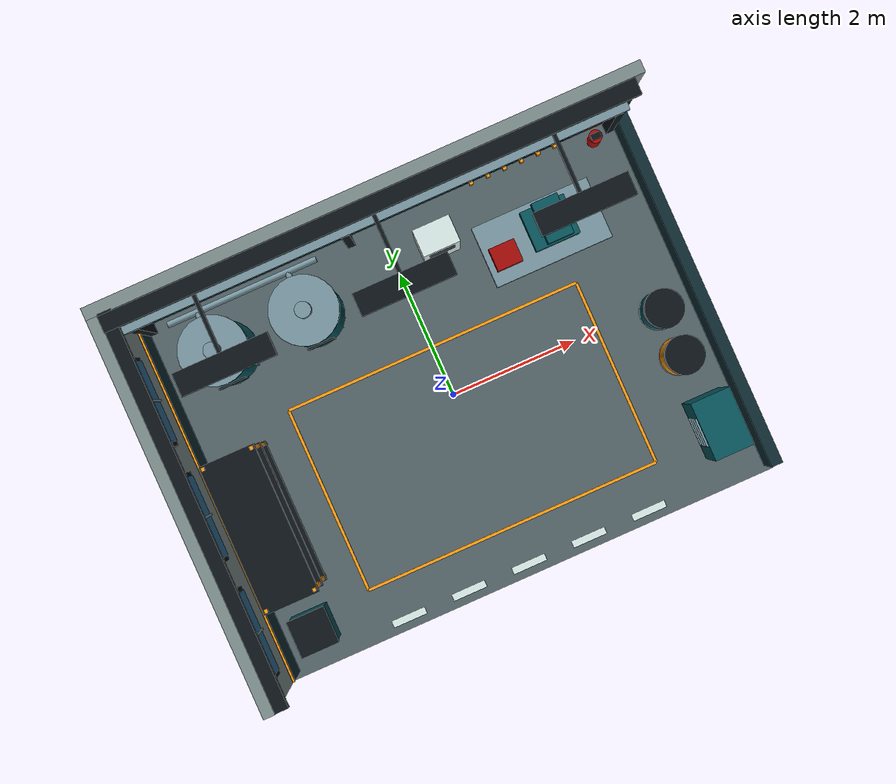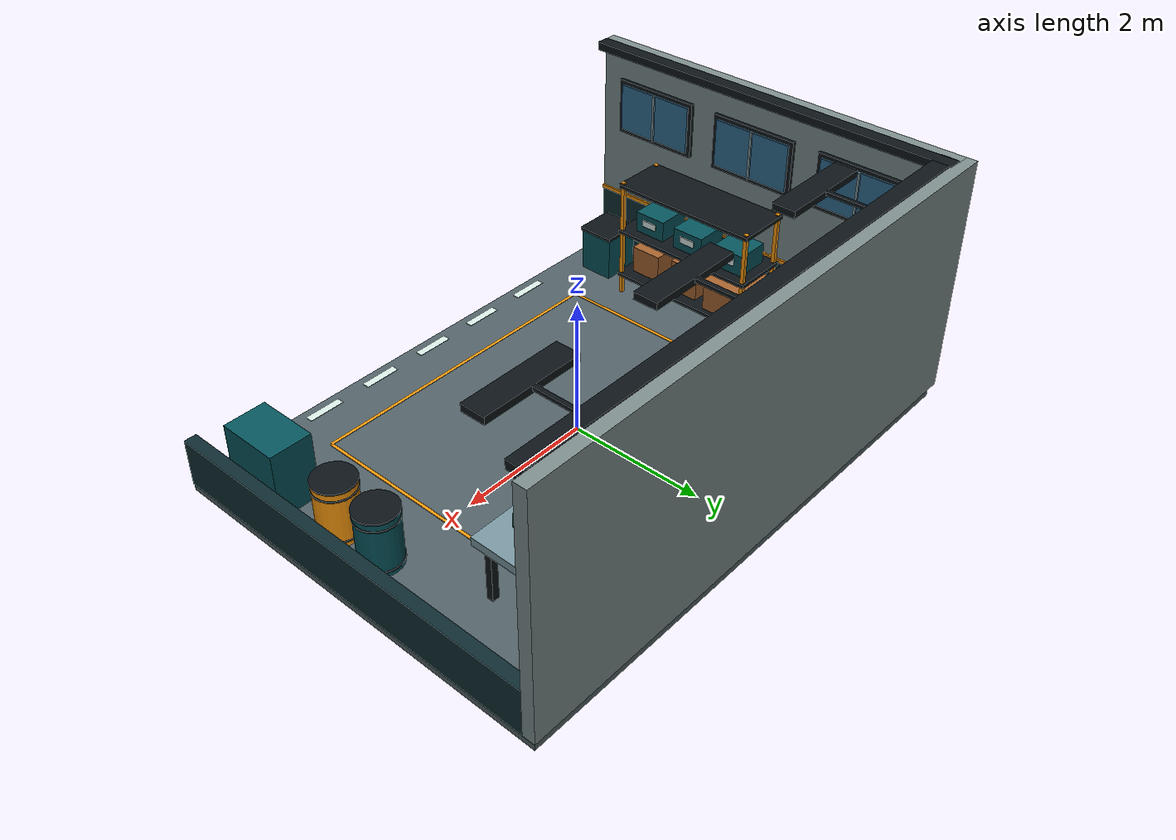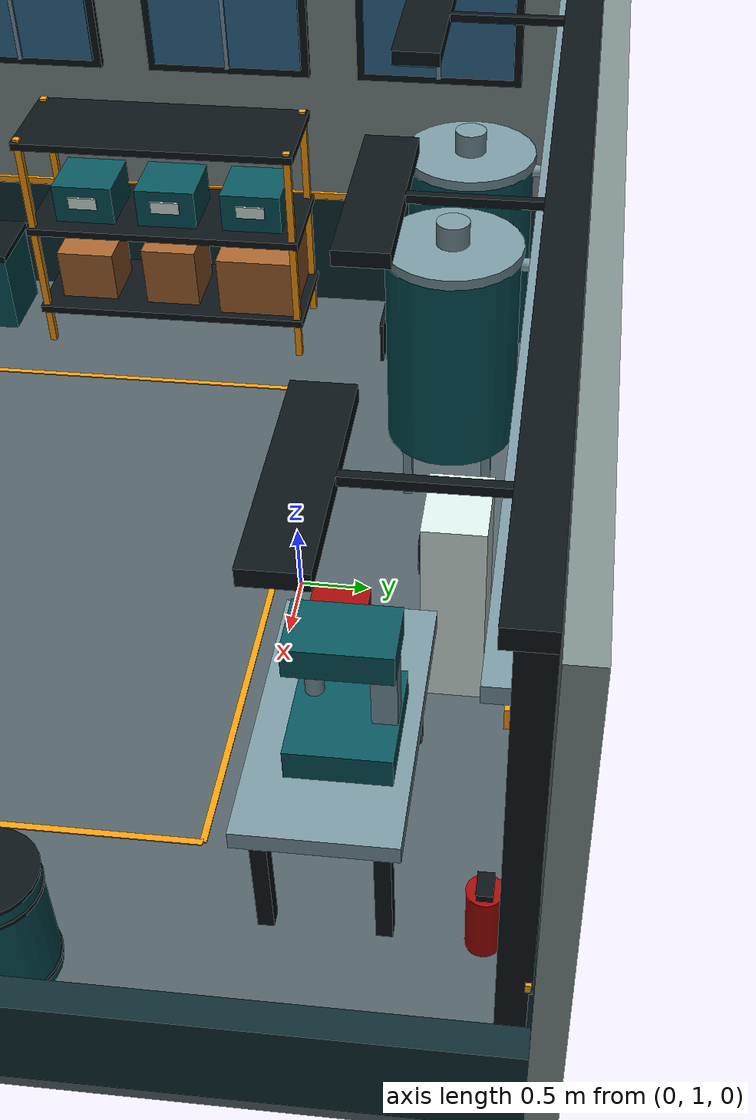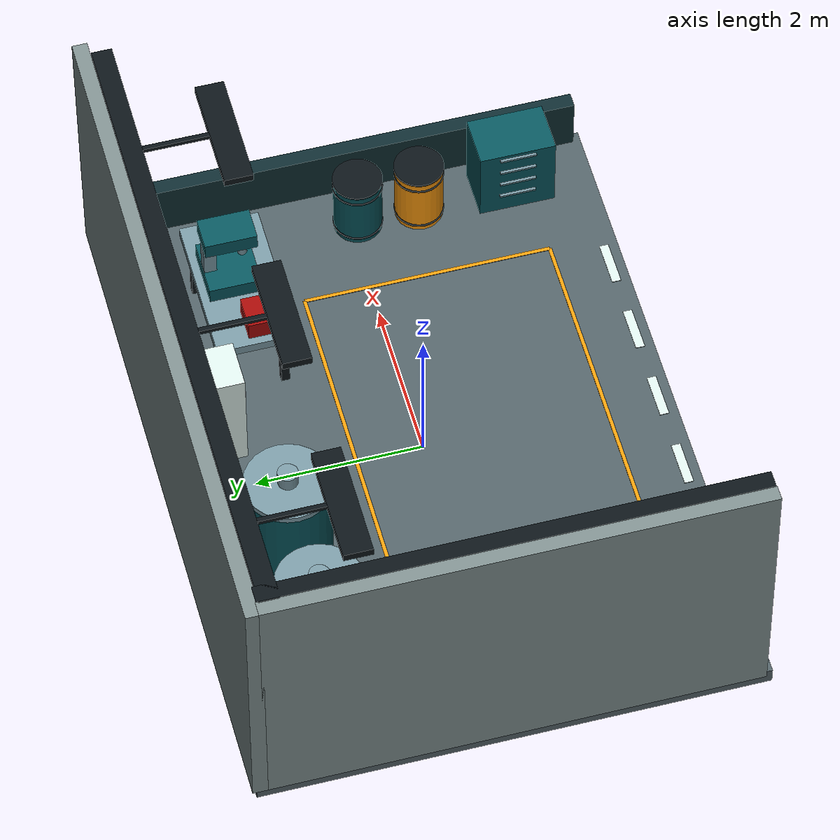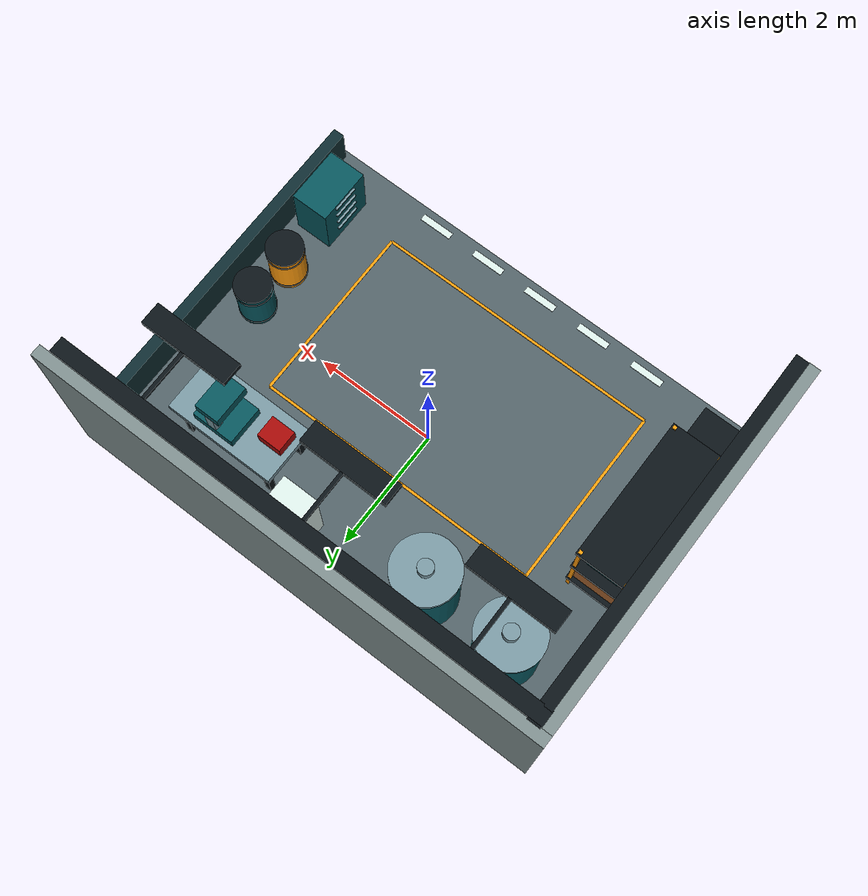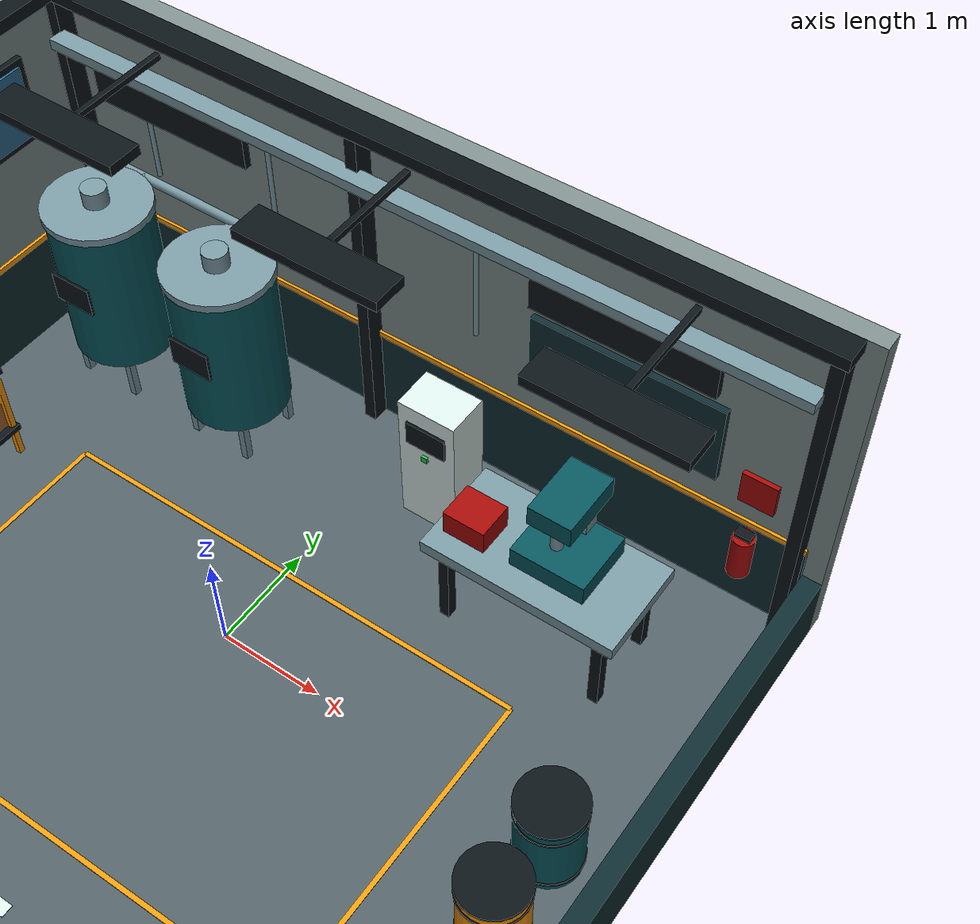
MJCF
<?xml version='1.0' encoding='utf-8'?>
<mujoco model="planta_industrial">
  <compiler angle="radian" />
  <option timestep="0.002" gravity="0 0 -9.81" />
  <visual>
    <global offwidth="1200" offheight="900" />
    <headlight diffuse="0.35 0.35 0.35" ambient="0.2 0.2 0.2" />
  </visual>
  <default>
    <geom friction="0.8 0.01 0.001" condim="3" />
  </default>
  <worldbody>
    <light pos="0 -2 8" dir="0 0 -1" directional="true" />
    <camera name="overview" pos="11 -15 12" quat="0.825515 0.4708795 0.1541521 0.2702492" />
    <light name="LED_1" pos="-2.65 1.63 3.055" dir="0 0 -1" diffuse="0.44 0.495 0.55" specular="0.2 0.2 0.2" castshadow="true" />
    <light name="LED_2" pos="0 1.63 3.055" dir="0 0 -1" diffuse="0.44 0.495 0.55" specular="0.2 0.2 0.2" castshadow="true" />
    <light name="LED_3" pos="2.65 1.63 3.055" dir="0 0 -1" diffuse="0.44 0.495 0.55" specular="0.2 0.2 0.2" castshadow="true" />
    <geom name="bench_toolbox" type="box" size="0.2 0.175 0.12" rgba="0.64 0.035 0.025 1" pos="1.52 1.55 1.12" quat="1 0 0 0" />
    <geom name="cable_tray" type="box" size="3.75 0.09 0.05" rgba="0.47 0.59 0.63 1" pos="0 2.65 2.97" quat="1 0 0 0" />
    <geom name="control_cabinet" type="box" size="0.29 0.21 0.72" rgba="0.85 0.92 0.9 1" pos="0.7 2.2 0.72" quat="1 0 0 0" />
    <geom name="control_light" type="box" size="0.03 0.0125 0.03" rgba="0.14 0.76 0.3 1" pos="0.7 1.96 0.91" quat="1 0 0 0" contype="0" conaffinity="0" />
    <geom name="control_screen" type="box" size="0.2 0.012 0.125" rgba="0.045 0.075 0.09 1" pos="0.7 1.98 1.13" quat="1 0 0 0" contype="0" conaffinity="0" />
    <body name="crate_01" pos="-3.3 -1.37 0.575" quat="1 0 0 0">
      <freejoint name="crate_01_free" />
      <geom name="crate_01" type="box" size="0.24 0.24 0.21" rgba="0.65 0.39 0.18 1" mass="2.0" />
    </body>
    <body name="crate_02" pos="-3.3 -0.63 0.615" quat="1 0 0 0">
      <freejoint name="crate_02_free" />
      <geom name="crate_02" type="box" size="0.26 0.23 0.25" rgba="0.65 0.39 0.18 1" mass="2.0" />
    </body>
    <body name="crate_03" pos="-3.3 0.13 0.615" quat="1 0 0 0">
      <freejoint name="crate_03_free" />
      <geom name="crate_03" type="box" size="0.35 0.325 0.25" rgba="0.65 0.39 0.18 1" mass="2.0" />
    </body>
    <geom name="drawer_handle" type="box" size="0.0175 0.22 0.0125" rgba="0.47 0.59 0.63 1" pos="3.105 -2 0.28" quat="1 0 0 0" contype="0" conaffinity="0" />
    <geom name="drawer_handle.001" type="box" size="0.0175 0.22 0.0125" rgba="0.47 0.59 0.63 1" pos="3.105 -2 0.5" quat="1 0 0 0" contype="0" conaffinity="0" />
    <geom name="drawer_handle.002" type="box" size="0.0175 0.22 0.0125" rgba="0.47 0.59 0.63 1" pos="3.105 -2 0.72" quat="1 0 0 0" contype="0" conaffinity="0" />
    <geom name="drawer_handle.003" type="box" size="0.0175 0.22 0.0125" rgba="0.47 0.59 0.63 1" pos="3.105 -2 0.94" quat="1 0 0 0" contype="0" conaffinity="0" />
    <geom name="drum" type="cylinder" size="0.29 0.42" rgba="0.025 0.33 0.36 1" pos="3.36 -0.1 0.42" quat="1 0 0 0" />
    <geom name="drum.001" type="cylinder" size="0.29 0.42" rgba="1 0.61 0.045 1" pos="3.36 -0.85 0.42" quat="1 0 0 0" />
    <geom name="drum_ring" type="cylinder" size="0.3 0.0125" rgba="0.045 0.075 0.09 1" pos="3.36 -0.1 0.08" quat="1 0 0 0" />
    <geom name="drum_ring.001" type="cylinder" size="0.3 0.0125" rgba="0.045 0.075 0.09 1" pos="3.36 -0.1 0.73" quat="1 0 0 0" />
    <geom name="drum_ring.002" type="cylinder" size="0.3 0.0125" rgba="0.045 0.075 0.09 1" pos="3.36 -0.1 0.845" quat="1 0 0 0" />
    <geom name="drum_ring.003" type="cylinder" size="0.3 0.0125" rgba="0.045 0.075 0.09 1" pos="3.36 -0.85 0.08" quat="1 0 0 0" />
    <geom name="drum_ring.004" type="cylinder" size="0.3 0.0125" rgba="0.045 0.075 0.09 1" pos="3.36 -0.85 0.73" quat="1 0 0 0" />
    <geom name="drum_ring.005" type="cylinder" size="0.3 0.0125" rgba="0.045 0.075 0.09 1" pos="3.36 -0.85 0.845" quat="1 0 0 0" />
    <geom name="entry_mark" type="box" size="0.275 0.055 0.004" rgba="0.85 0.92 0.9 1" pos="-2 -2.83 0.004" quat="1 0 0 0" contype="0" conaffinity="0" />
    <geom name="entry_mark.001" type="box" size="0.275 0.055 0.004" rgba="0.85 0.92 0.9 1" pos="-1 -2.83 0.004" quat="1 0 0 0" contype="0" conaffinity="0" />
    <geom name="entry_mark.002" type="box" size="0.275 0.055 0.004" rgba="0.85 0.92 0.9 1" pos="0 -2.83 0.004" quat="1 0 0 0" contype="0" conaffinity="0" />
    <geom name="entry_mark.003" type="box" size="0.275 0.055 0.004" rgba="0.85 0.92 0.9 1" pos="1 -2.83 0.004" quat="1 0 0 0" contype="0" conaffinity="0" />
    <geom name="entry_mark.004" type="box" size="0.275 0.055 0.004" rgba="0.85 0.92 0.9 1" pos="2 -2.83 0.004" quat="1 0 0 0" contype="0" conaffinity="0" />
    <geom name="extinguisher_handle" type="box" size="0.075 0.045 0.0225" rgba="0.045 0.075 0.09 1" pos="3.42 2.6 1.21" quat="1 0 0 0" />
    <geom name="fire_extinguisher" type="cylinder" size="0.1 0.22" rgba="0.64 0.035 0.025 1" pos="3.42 2.6 0.96" quat="1 0 0 0" />
    <geom name="fire_sign" type="box" size="0.16 0.0225 0.165" rgba="0.64 0.035 0.025 1" pos="3.42 2.73 1.61" quat="1 0 0 0" contype="0" conaffinity="0" />
    <geom name="floor" type="box" size="4 3 0.1" rgba="0.32 0.38 0.4 1" pos="0 0 -0.1" quat="1 0 0 0" />
    <geom name="lamp_bracket" type="box" size="0.0275 0.6 0.0275" rgba="0.045 0.075 0.09 1" pos="-2.65 2.19 3.17" quat="1 0 0 0" />
    <geom name="lamp_bracket.001" type="box" size="0.0275 0.6 0.0275" rgba="0.045 0.075 0.09 1" pos="0 2.19 3.17" quat="1 0 0 0" />
    <geom name="lamp_bracket.002" type="box" size="0.0275 0.6 0.0275" rgba="0.045 0.075 0.09 1" pos="2.65 2.19 3.17" quat="1 0 0 0" />
    <geom name="lamp_diffuser" type="box" size="0.645 0.135 0.015" rgba="0.78 0.9 1 1" pos="-2.65 1.63 3.085" quat="1 0 0 0" contype="0" conaffinity="0" />
    <geom name="lamp_diffuser.001" type="box" size="0.645 0.135 0.015" rgba="0.78 0.9 1 1" pos="0 1.63 3.085" quat="1 0 0 0" contype="0" conaffinity="0" />
    <geom name="lamp_diffuser.002" type="box" size="0.645 0.135 0.015" rgba="0.78 0.9 1 1" pos="2.65 1.63 3.085" quat="1 0 0 0" contype="0" conaffinity="0" />
    <geom name="lamp_housing" type="box" size="0.7 0.17 0.05" rgba="0.045 0.075 0.09 1" pos="-2.65 1.63 3.15" quat="1 0 0 0" />
    <geom name="lamp_housing.001" type="box" size="0.7 0.17 0.05" rgba="0.045 0.075 0.09 1" pos="0 1.63 3.15" quat="1 0 0 0" />
    <geom name="lamp_housing.002" type="box" size="0.7 0.17 0.05" rgba="0.045 0.075 0.09 1" pos="2.65 1.63 3.15" quat="1 0 0 0" />
    <geom name="machine_base" type="box" size="0.35 0.31 0.1" rgba="0.025 0.33 0.36 1" pos="2.3 1.72 1.1" quat="1 0 0 0" />
    <geom name="machine_column" type="box" size="0.075 0.075 0.325" rgba="0.47 0.59 0.63 1" pos="2.3 1.95 1.44" quat="1 0 0 0" />
    <geom name="machine_head" type="box" size="0.2 0.31 0.1" rgba="0.025 0.33 0.36 1" pos="2.3 1.72 1.75" quat="1 0 0 0" />
    <geom name="machine_spindle" type="cylinder" size="0.055 0.14" rgba="0.47 0.59 0.63 1" pos="2.3 1.55 1.5" quat="1 0 0 0" />
    <geom name="rack_bin" type="box" size="0.26 0.25 0.16" rgba="0.025 0.33 0.36 1" pos="-3.3 -1.3 1.27" quat="1 0 0 0" />
    <geom name="rack_bin.001" type="box" size="0.26 0.25 0.16" rgba="0.025 0.33 0.36 1" pos="-3.3 -0.6 1.27" quat="1 0 0 0" />
    <geom name="rack_bin.002" type="box" size="0.26 0.25 0.16" rgba="0.025 0.33 0.36 1" pos="-3.3 0.12 1.27" quat="1 0 0 0" />
    <geom name="rack_bin_label" type="box" size="0.0075 0.12 0.05" rgba="0.85 0.92 0.9 1" pos="-3.032 -1.3 1.29" quat="1 0 0 0" contype="0" conaffinity="0" />
    <geom name="rack_bin_label.001" type="box" size="0.0075 0.12 0.05" rgba="0.85 0.92 0.9 1" pos="-3.032 -0.6 1.29" quat="1 0 0 0" contype="0" conaffinity="0" />
    <geom name="rack_bin_label.002" type="box" size="0.0075 0.12 0.05" rgba="0.85 0.92 0.9 1" pos="-3.032 0.12 1.29" quat="1 0 0 0" contype="0" conaffinity="0" />
    <geom name="rack_post" type="box" size="0.0275 0.0275 0.95" rgba="1 0.61 0.045 1" pos="-3.68 -1.72 0.95" quat="1 0 0 0" />
    <geom name="rack_post.001" type="box" size="0.0275 0.0275 0.95" rgba="1 0.61 0.045 1" pos="-3.68 0.48 0.95" quat="1 0 0 0" />
    <geom name="rack_post.002" type="box" size="0.0275 0.0275 0.95" rgba="1 0.61 0.045 1" pos="-2.93 -1.72 0.95" quat="1 0 0 0" />
    <geom name="rack_post.003" type="box" size="0.0275 0.0275 0.95" rgba="1 0.61 0.045 1" pos="-2.93 0.48 0.95" quat="1 0 0 0" />
    <geom name="rack_shelf" type="box" size="0.425 1.15 0.03" rgba="0.045 0.075 0.09 1" pos="-3.305 -0.62 0.33" quat="1 0 0 0" />
    <geom name="rack_shelf.001" type="box" size="0.425 1.15 0.03" rgba="0.045 0.075 0.09 1" pos="-3.305 -0.62 1.08" quat="1 0 0 0" />
    <geom name="rack_shelf.002" type="box" size="0.425 1.15 0.03" rgba="0.045 0.075 0.09 1" pos="-3.305 -0.62 1.85" quat="1 0 0 0" />
    <geom name="recycling_bin" type="box" size="0.29 0.275 0.34" rgba="0.025 0.33 0.36 1" pos="-3.35 -2.37 0.34" quat="1 0 0 0" />
    <geom name="recycling_lid" type="box" size="0.305 0.29 0.0275" rgba="0.045 0.075 0.09 1" pos="-3.35 -2.37 0.7" quat="1 0 0 0" />
    <geom name="section_sign" type="box" size="0.86 0.035 0.17" rgba="0.045 0.075 0.09 1" pos="-2.57 2.74 2.6" quat="1 0 0 0" contype="0" conaffinity="0" />
    <geom name="section_sign.001" type="box" size="0.86 0.035 0.17" rgba="0.045 0.075 0.09 1" pos="2.08 2.74 2.6" quat="1 0 0 0" contype="0" conaffinity="0" />
    <geom name="service_pipe" type="cylinder" size="0.045 1.15" rgba="0.47 0.59 0.63 1" pos="-2.15 2.55 1.9" quat="0.7071068 0 0.7071068 0" />
    <geom name="tank_1" type="cylinder" size="0.49 0.775" rgba="0.025 0.33 0.36 1" pos="-2.85 1.95 1.2" quat="1 0 0 0" />
    <geom name="tank_2" type="cylinder" size="0.49 0.775" rgba="0.025 0.33 0.36 1" pos="-1.45 1.95 1.2" quat="1 0 0 0" />
    <geom name="tank_badge" type="box" size="0.215 0.0125 0.15" rgba="0.045 0.075 0.09 1" pos="-2.85 1.455 1.3" quat="1 0 0 0" contype="0" conaffinity="0" />
    <geom name="tank_badge.001" type="box" size="0.215 0.0125 0.15" rgba="0.045 0.075 0.09 1" pos="-1.45 1.455 1.3" quat="1 0 0 0" contype="0" conaffinity="0" />
    <geom name="tank_connection" type="cylinder" size="0.045 0.3" rgba="0.47 0.59 0.63 1" pos="-2.85 2.25 1.9" quat="0.7071068 0.7071068 0 0" />
    <geom name="tank_connection.001" type="cylinder" size="0.045 0.3" rgba="0.47 0.59 0.63 1" pos="-1.45 2.25 1.9" quat="0.7071068 0.7071068 0 0" />
    <geom name="tank_leg" type="box" size="0.035 0.035 0.22" rgba="0.47 0.59 0.63 1" pos="-3.15 1.65 0.22" quat="1 0 0 0" />
    <geom name="tank_leg.001" type="box" size="0.035 0.035 0.22" rgba="0.47 0.59 0.63 1" pos="-3.15 2.25 0.22" quat="1 0 0 0" />
    <geom name="tank_leg.002" type="box" size="0.035 0.035 0.22" rgba="0.47 0.59 0.63 1" pos="-2.55 1.65 0.22" quat="1 0 0 0" />
    <geom name="tank_leg.003" type="box" size="0.035 0.035 0.22" rgba="0.47 0.59 0.63 1" pos="-2.55 2.25 0.22" quat="1 0 0 0" />
    <geom name="tank_leg.004" type="box" size="0.035 0.035 0.22" rgba="0.47 0.59 0.63 1" pos="-1.75 1.65 0.22" quat="1 0 0 0" />
    <geom name="tank_leg.005" type="box" size="0.035 0.035 0.22" rgba="0.47 0.59 0.63 1" pos="-1.75 2.25 0.22" quat="1 0 0 0" />
    <geom name="tank_leg.006" type="box" size="0.035 0.035 0.22" rgba="0.47 0.59 0.63 1" pos="-1.15 1.65 0.22" quat="1 0 0 0" />
    <geom name="tank_leg.007" type="box" size="0.035 0.035 0.22" rgba="0.47 0.59 0.63 1" pos="-1.15 2.25 0.22" quat="1 0 0 0" />
    <geom name="tank_lid" type="cylinder" size="0.51 0.0375" rgba="0.47 0.59 0.63 1" pos="-2.85 1.95 2" quat="1 0 0 0" />
    <geom name="tank_lid.001" type="cylinder" size="0.51 0.0375" rgba="0.47 0.59 0.63 1" pos="-1.45 1.95 2" quat="1 0 0 0" />
    <geom name="tank_neck" type="cylinder" size="0.12 0.09" rgba="0.47 0.59 0.63 1" pos="-2.85 1.95 2.12" quat="1 0 0 0" />
    <geom name="tank_neck.001" type="cylinder" size="0.12 0.09" rgba="0.47 0.59 0.63 1" pos="-1.45 1.95 2.12" quat="1 0 0 0" />
    <geom name="tool_board" type="box" size="0.9 0.03 0.4" rgba="0.055 0.17 0.19 1" pos="2.15 2.73 1.94" quat="1 0 0 0" />
    <geom name="tool_cabinet" type="box" size="0.31 0.46 0.5" rgba="0.025 0.33 0.36 1" pos="3.43 -2 0.5" quat="1 0 0 0" />
    <geom name="tool_grip" type="box" size="0.0275 0.0325 0.07" rgba="1 0.61 0.045 1" pos="1.45 2.66 1.76" quat="1 0 0 0" contype="0" conaffinity="0" />
    <geom name="tool_grip.001" type="box" size="0.0275 0.0325 0.07" rgba="1 0.61 0.045 1" pos="1.71 2.66 1.76" quat="1 0 0 0" contype="0" conaffinity="0" />
    <geom name="tool_grip.002" type="box" size="0.0275 0.0325 0.07" rgba="1 0.61 0.045 1" pos="1.97 2.66 1.76" quat="1 0 0 0" contype="0" conaffinity="0" />
    <geom name="tool_grip.003" type="box" size="0.0275 0.0325 0.07" rgba="1 0.61 0.045 1" pos="2.23 2.66 1.76" quat="1 0 0 0" contype="0" conaffinity="0" />
    <geom name="tool_grip.004" type="box" size="0.0275 0.0325 0.07" rgba="1 0.61 0.045 1" pos="2.49 2.66 1.76" quat="1 0 0 0" contype="0" conaffinity="0" />
    <geom name="tool_grip.005" type="box" size="0.0275 0.0325 0.07" rgba="1 0.61 0.045 1" pos="2.75 2.66 1.76" quat="1 0 0 0" contype="0" conaffinity="0" />
    <geom name="tool_shaft" type="box" size="0.0125 0.0175 0.165" rgba="0.47 0.59 0.63 1" pos="1.45 2.68 1.94" quat="1 0 0 0" contype="0" conaffinity="0" />
    <geom name="tool_shaft.001" type="box" size="0.0125 0.0175 0.165" rgba="0.47 0.59 0.63 1" pos="1.71 2.68 1.94" quat="1 0 0 0" contype="0" conaffinity="0" />
    <geom name="tool_shaft.002" type="box" size="0.0125 0.0175 0.165" rgba="0.47 0.59 0.63 1" pos="1.97 2.68 1.94" quat="1 0 0 0" contype="0" conaffinity="0" />
    <geom name="tool_shaft.003" type="box" size="0.0125 0.0175 0.165" rgba="0.47 0.59 0.63 1" pos="2.23 2.68 1.94" quat="1 0 0 0" contype="0" conaffinity="0" />
    <geom name="tool_shaft.004" type="box" size="0.0125 0.0175 0.165" rgba="0.47 0.59 0.63 1" pos="2.49 2.68 1.94" quat="1 0 0 0" contype="0" conaffinity="0" />
    <geom name="tool_shaft.005" type="box" size="0.0125 0.0175 0.165" rgba="0.47 0.59 0.63 1" pos="2.75 2.68 1.94" quat="1 0 0 0" contype="0" conaffinity="0" />
    <geom name="utility_conduit" type="cylinder" size="0.023 0.56" rgba="0.47 0.59 0.63 1" pos="-2.85 2.73 2.36" quat="1 0 0 0" />
    <geom name="utility_conduit.001" type="cylinder" size="0.023 0.56" rgba="0.47 0.59 0.63 1" pos="-1.45 2.73 2.36" quat="1 0 0 0" />
    <geom name="utility_conduit.002" type="cylinder" size="0.023 0.56" rgba="0.47 0.59 0.63 1" pos="0.7 2.73 2.36" quat="1 0 0 0" />
    <geom name="wall_back" type="box" size="4.06 0.09 1.75" rgba="0.49 0.55 0.55 1" pos="0 2.97 1.75" quat="1 0 0 0" />
    <geom name="wall_back_base" type="box" size="3.88 0.0125 0.5" rgba="0.055 0.17 0.19 1" pos="0 2.868 0.5" quat="1 0 0 0" contype="0" conaffinity="0" />
    <geom name="wall_back_beam" type="box" size="3.9 0.12 0.06" rgba="0.045 0.075 0.09 1" pos="0 2.75 3.45" quat="1 0 0 0" />
    <geom name="wall_back_stripe" type="box" size="3.88 0.015 0.0275" rgba="1 0.61 0.045 1" pos="0 2.85 1.04" quat="1 0 0 0" contype="0" conaffinity="0" />
    <geom name="wall_column" type="box" size="0.06 0.09 1.75" rgba="0.045 0.075 0.09 1" pos="-3.8 2.78 1.75" quat="1 0 0 0" />
    <geom name="wall_column.001" type="box" size="0.06 0.09 1.75" rgba="0.045 0.075 0.09 1" pos="-0.5 2.78 1.75" quat="1 0 0 0" />
    <geom name="wall_column.002" type="box" size="0.06 0.09 1.75" rgba="0.045 0.075 0.09 1" pos="3.8 2.78 1.75" quat="1 0 0 0" />
    <geom name="wall_left" type="box" size="0.09 2.91 1.75" rgba="0.49 0.55 0.55 1" pos="-3.97 0 1.75" quat="1 0 0 0" />
    <geom name="wall_left_base" type="box" size="0.0125 2.9 0.5" rgba="0.055 0.17 0.19 1" pos="-3.868 0 0.5" quat="1 0 0 0" contype="0" conaffinity="0" />
    <geom name="wall_left_beam" type="box" size="0.1 2.9 0.06" rgba="0.045 0.075 0.09 1" pos="-3.79 0 3.45" quat="1 0 0 0" />
    <geom name="wall_left_stripe" type="box" size="0.015 2.9 0.0275" rgba="1 0.61 0.045 1" pos="-3.85 0 1.04" quat="1 0 0 0" contype="0" conaffinity="0" />
    <geom name="wall_right_cutaway" type="box" size="0.09 2.91 0.35" rgba="0.055 0.17 0.19 1" pos="3.97 0 0.35" quat="1 0 0 0" />
    <geom name="window_frame" type="box" size="0.0275 0.675 0.425" rgba="0.045 0.075 0.09 1" pos="-3.848 -1.9 2.55" quat="1 0 0 0" contype="0" conaffinity="0" />
    <geom name="window_frame.001" type="box" size="0.0275 0.675 0.425" rgba="0.045 0.075 0.09 1" pos="-3.848 -0.15 2.55" quat="1 0 0 0" contype="0" conaffinity="0" />
    <geom name="window_frame.002" type="box" size="0.0275 0.675 0.425" rgba="0.045 0.075 0.09 1" pos="-3.848 1.6 2.55" quat="1 0 0 0" contype="0" conaffinity="0" />
    <geom name="window_mullion" type="box" size="0.0175 0.0175 0.365" rgba="0.47 0.59 0.63 1" pos="-3.79 -1.9 2.55" quat="1 0 0 0" contype="0" conaffinity="0" />
    <geom name="window_mullion.001" type="box" size="0.0175 0.0175 0.365" rgba="0.47 0.59 0.63 1" pos="-3.79 -0.15 2.55" quat="1 0 0 0" contype="0" conaffinity="0" />
    <geom name="window_mullion.002" type="box" size="0.0175 0.0175 0.365" rgba="0.47 0.59 0.63 1" pos="-3.79 1.6 2.55" quat="1 0 0 0" contype="0" conaffinity="0" />
    <geom name="window_pane" type="box" size="0.0125 0.61 0.36" rgba="0.18 0.42 0.57 1" pos="-3.81 -1.9 2.55" quat="1 0 0 0" contype="0" conaffinity="0" />
    <geom name="window_pane.001" type="box" size="0.0125 0.61 0.36" rgba="0.18 0.42 0.57 1" pos="-3.81 -0.15 2.55" quat="1 0 0 0" contype="0" conaffinity="0" />
    <geom name="window_pane.002" type="box" size="0.0125 0.61 0.36" rgba="0.18 0.42 0.57 1" pos="-3.81 1.6 2.55" quat="1 0 0 0" contype="0" conaffinity="0" />
    <geom name="workbench_leg" type="box" size="0.05 0.05 0.44" rgba="0.045 0.075 0.09 1" pos="1.4 1.3 0.44" quat="1 0 0 0" />
    <geom name="workbench_leg.001" type="box" size="0.05 0.05 0.44" rgba="0.045 0.075 0.09 1" pos="1.4 2 0.44" quat="1 0 0 0" />
    <geom name="workbench_leg.002" type="box" size="0.05 0.05 0.44" rgba="0.045 0.075 0.09 1" pos="2.9 1.3 0.44" quat="1 0 0 0" />
    <geom name="workbench_leg.003" type="box" size="0.05 0.05 0.44" rgba="0.045 0.075 0.09 1" pos="2.9 2 0.44" quat="1 0 0 0" />
    <geom name="workbench_top" type="box" size="0.925 0.475 0.06" rgba="0.47 0.59 0.63 1" pos="2.15 1.65 0.94" quat="1 0 0 0" />
    <geom name="workzone_line" type="box" size="2.4 0.0225 0.004" rgba="1 0.61 0.045 1" pos="0 -2.2 0.004" quat="1 0 0 0" contype="0" conaffinity="0" />
    <geom name="workzone_line.001" type="box" size="2.4 0.0225 0.004" rgba="1 0.61 0.045 1" pos="0 0.8 0.004" quat="1 0 0 0" contype="0" conaffinity="0" />
    <geom name="workzone_line.002" type="box" size="0.0225 1.5 0.004" rgba="1 0.61 0.045 1" pos="-2.4 -0.7 0.004" quat="1 0 0 0" contype="0" conaffinity="0" />
    <geom name="workzone_line.003" type="box" size="0.0225 1.5 0.004" rgba="1 0.61 0.045 1" pos="2.4 -0.7 0.004" quat="1 0 0 0" contype="0" conaffinity="0" />
  </worldbody>
</mujoco>
